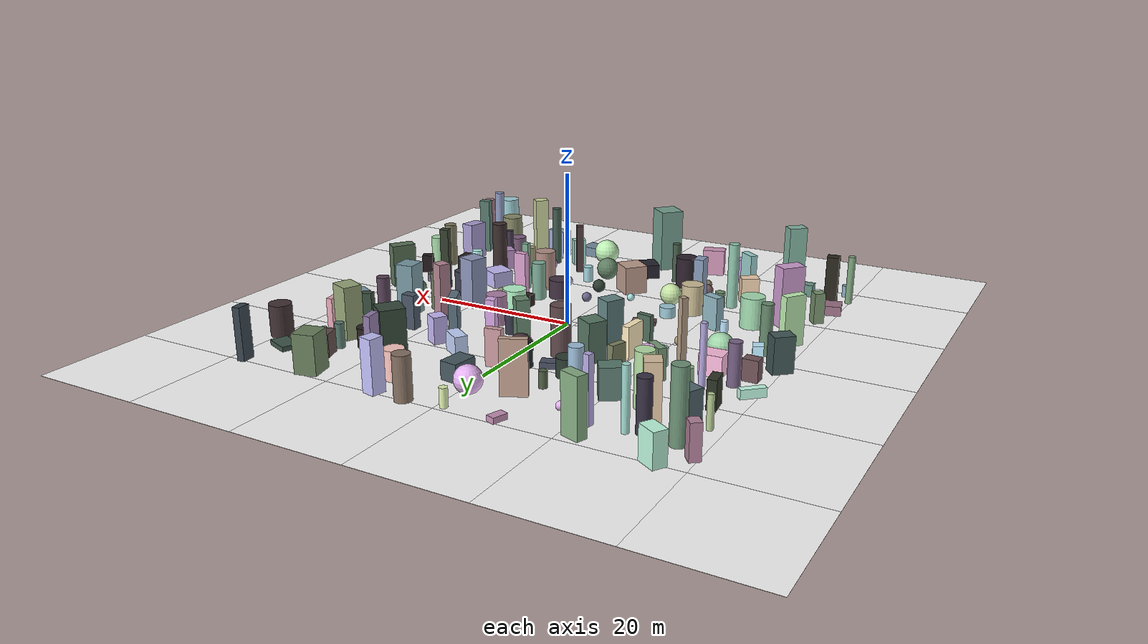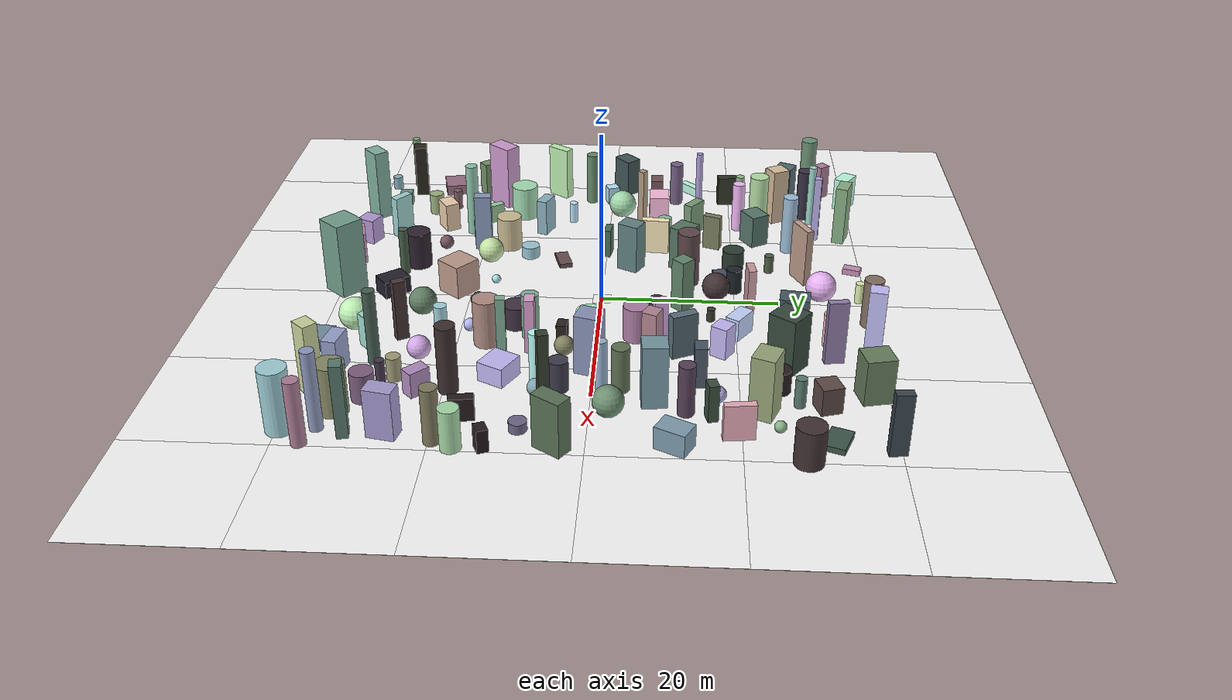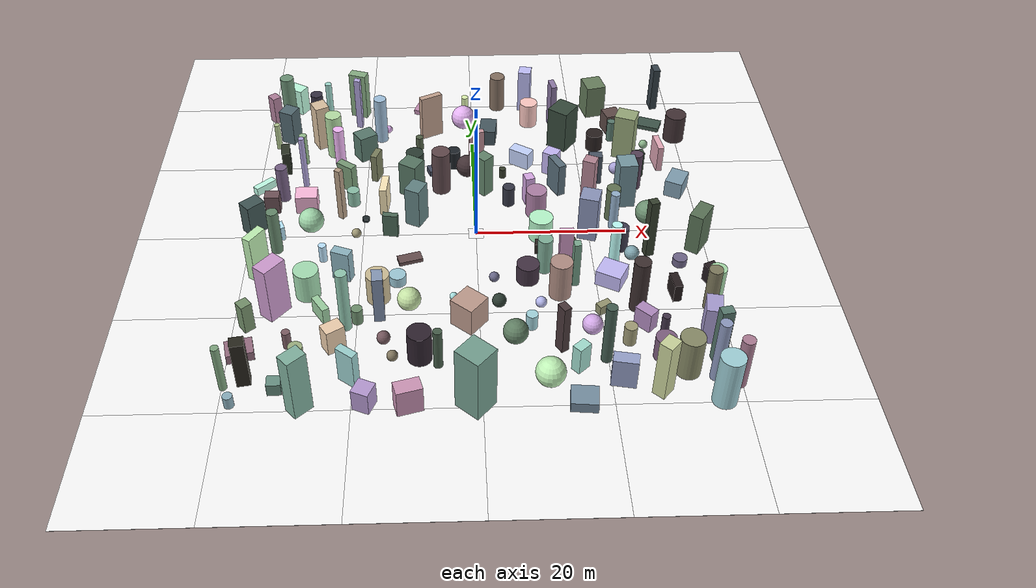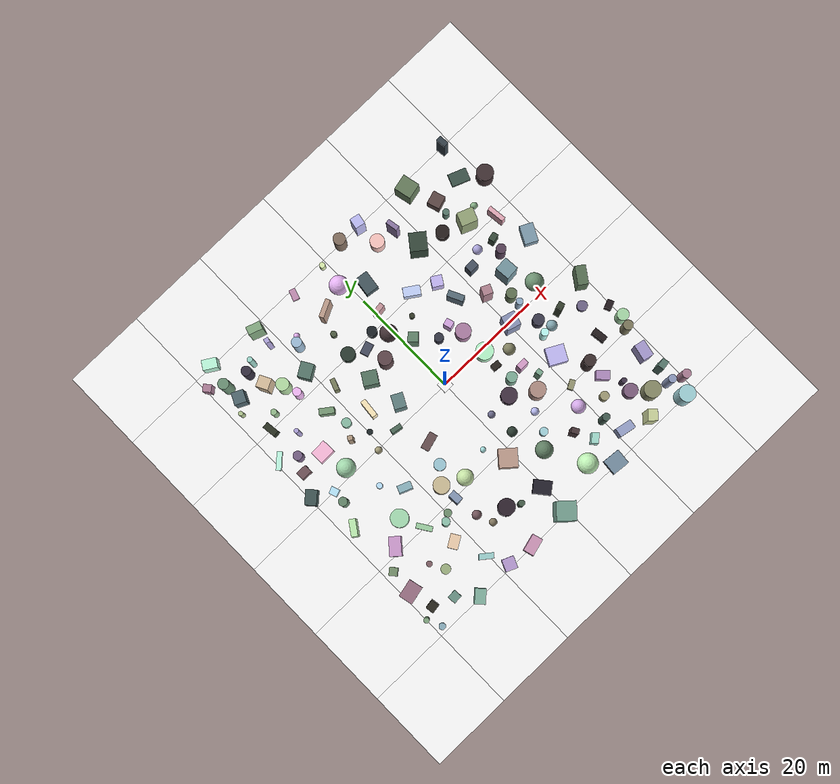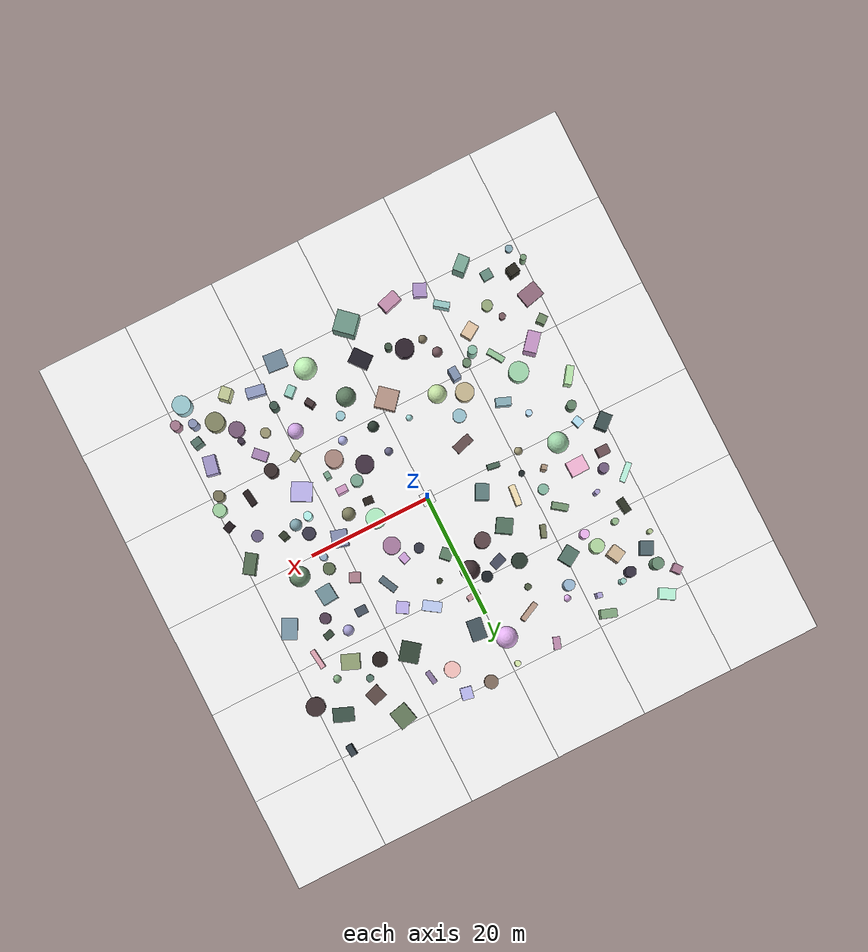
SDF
<sdf version="1.9">
 <world name="iris_runway">
  <physics name="1ms" type="ignore">
   <max_step_size>0.001</max_step_size>
   <real_time_factor>1.0</real_time_factor>
  </physics>
  <plugin filename="gz-sim-physics-system" name="gz::sim::systems::Physics"/>
  <plugin filename="gz-sim-sensors-system" name="gz::sim::systems::Sensors">
   <render_engine>ogre2</render_engine>
   <headless_rendering>false</headless_rendering>
  </plugin>
  <plugin filename="gz-sim-user-commands-system" name="gz::sim::systems::UserCommands"/>
  <plugin filename="gz-sim-scene-broadcaster-system" name="gz::sim::systems::SceneBroadcaster"/>
  <plugin filename="gz-sim-imu-system" name="gz::sim::systems::Imu"/>
  <plugin filename="gz-sim-navsat-system" name="gz::sim::systems::NavSat"/>
  <scene><ambient>1.0 1.0 1.0</ambient><background>0.8 0.8 0.8</background></scene>
  <spherical_coordinates>
   <latitude_deg>-35.363262</latitude_deg>
   <longitude_deg>149.165237</longitude_deg>
   <elevation>584</elevation>
   <heading_deg>0</heading_deg>
   <surface_model>EARTH_WGS84</surface_model>
  </spherical_coordinates>
  <light type="directional" name="sun">
   <pose>0 0 10 0 0 0</pose>
   <diffuse>0.8 0.8 0.8 1</diffuse>
   <specular>0.8 0.8 0.8 1</specular>
   <attenuation>
    <range>1000</range>
    <constant>0.9</constant>
    <linear>0.01</linear>
    <quadratic>0.001</quadratic>
   </attenuation>
   <direction>-0.5 0.1 -0.9</direction>
  </light>
  <model name="axes">
   <static>1</static>
   <link name="link">
    <visual name="r">
     <cast_shadows>0</cast_shadows>
     <pose>5 0 0.1 0 0 0</pose>
     <geometry><box><size>10 0.01 0.01</size></box></geometry>
     <material>
      <ambient>1 0 0 0.8</ambient>
      <diffuse>1 0 0 0.8</diffuse>
      <emissive>1 0 0 0.8</emissive>
      <specular>0.5 0.5 0.5 0.8</specular>
     </material>
    </visual>
    <visual name="g">
     <cast_shadows>0</cast_shadows>
     <pose>0 5 0.1 0 0 0</pose>
     <geometry><box><size>0.01 10 0.01</size></box></geometry>
     <material>
      <ambient>0 1 0 0.8</ambient>
      <diffuse>0 1 0 0.8</diffuse>
      <emissive>0 1 0 0.8</emissive>
      <specular>0.5 0.5 0.5 0.8</specular>
     </material>
    </visual>
    <visual name="b">
     <cast_shadows>0</cast_shadows>
     <pose>0 0 5.1 0 0 0</pose>
     <geometry><box><size>0.01 0.01 10</size></box></geometry>
     <material>
      <ambient>0 0 1 0.8</ambient>
      <diffuse>0 0 1 0.8</diffuse>
      <emissive>0 0 1 0.8</emissive>
      <specular>0.5 0.5 0.5 0.8</specular>
     </material>
    </visual>
    <sensor name="navsat_sensor" type="navsat"><always_on>1</always_on><update_rate>1</update_rate></sensor>
   </link>
  </model>
  <include><uri>model://vio_ground</uri></include>
  <include><uri>model://vio_feature_field</uri></include>
 </world>
</sdf>

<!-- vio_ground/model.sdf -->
<sdf version="1.9">
  <model name="vio_ground">
    <static>true</static>
    <link name="link">
      <visual name="g0_0">
        <pose>-37.50 -37.50 0.01 0 0 0</pose>
        <cast_shadows>false</cast_shadows>
        <geometry><box><size>15.00 15.00 0.02</size></box></geometry>
        <material>
          <ambient>1 1 1 1</ambient>
          <diffuse>1 1 1 1</diffuse>
          <specular>0.05 0.05 0.05 1</specular>
          <pbr><metal>
            <albedo_map>model://vio_ground/materials/textures/ground0.png</albedo_map>
            <roughness>0.9</roughness>
            <metalness>0</metalness>
          </metal></pbr>
        </material>
      </visual>
      <visual name="g0_1">
        <pose>-37.50 -22.50 0.01 0 0 0</pose>
        <cast_shadows>false</cast_shadows>
        <geometry><box><size>15.00 15.00 0.02</size></box></geometry>
        <material>
          <ambient>1 1 1 1</ambient>
          <diffuse>1 1 1 1</diffuse>
          <specular>0.05 0.05 0.05 1</specular>
          <pbr><metal>
            <albedo_map>model://vio_ground/materials/textures/ground2.png</albedo_map>
            <roughness>0.9</roughness>
            <metalness>0</metalness>
          </metal></pbr>
        </material>
      </visual>
      <visual name="g0_2">
        <pose>-37.50 -7.50 0.01 0 0 0</pose>
        <cast_shadows>false</cast_shadows>
        <geometry><box><size>15.00 15.00 0.02</size></box></geometry>
        <material>
          <ambient>1 1 1 1</ambient>
          <diffuse>1 1 1 1</diffuse>
          <specular>0.05 0.05 0.05 1</specular>
          <pbr><metal>
            <albedo_map>model://vio_ground/materials/textures/ground0.png</albedo_map>
            <roughness>0.9</roughness>
            <metalness>0</metalness>
          </metal></pbr>
        </material>
      </visual>
      <visual name="g0_3">
        <pose>-37.50 7.50 0.01 0 0 0</pose>
        <cast_shadows>false</cast_shadows>
        <geometry><box><size>15.00 15.00 0.02</size></box></geometry>
        <material>
          <ambient>1 1 1 1</ambient>
          <diffuse>1 1 1 1</diffuse>
          <specular>0.05 0.05 0.05 1</specular>
          <pbr><metal>
            <albedo_map>model://vio_ground/materials/textures/ground2.png</albedo_map>
            <roughness>0.9</roughness>
            <metalness>0</metalness>
          </metal></pbr>
        </material>
      </visual>
      <visual name="g0_4">
        <pose>-37.50 22.50 0.01 0 0 0</pose>
        <cast_shadows>false</cast_shadows>
        <geometry><box><size>15.00 15.00 0.02</size></box></geometry>
        <material>
          <ambient>1 1 1 1</ambient>
          <diffuse>1 1 1 1</diffuse>
          <specular>0.05 0.05 0.05 1</specular>
          <pbr><metal>
            <albedo_map>model://vio_ground/materials/textures/ground0.png</albedo_map>
            <roughness>0.9</roughness>
            <metalness>0</metalness>
          </metal></pbr>
        </material>
      </visual>
      <visual name="g0_5">
        <pose>-37.50 37.50 0.01 0 0 0</pose>
        <cast_shadows>false</cast_shadows>
        <geometry><box><size>15.00 15.00 0.02</size></box></geometry>
        <material>
          <ambient>1 1 1 1</ambient>
          <diffuse>1 1 1 1</diffuse>
          <specular>0.05 0.05 0.05 1</specular>
          <pbr><metal>
            <albedo_map>model://vio_ground/materials/textures/ground2.png</albedo_map>
            <roughness>0.9</roughness>
            <metalness>0</metalness>
          </metal></pbr>
        </material>
      </visual>
      <visual name="g1_0">
        <pose>-22.50 -37.50 0.01 0 0 0</pose>
        <cast_shadows>false</cast_shadows>
        <geometry><box><size>15.00 15.00 0.02</size></box></geometry>
        <material>
          <ambient>1 1 1 1</ambient>
          <diffuse>1 1 1 1</diffuse>
          <specular>0.05 0.05 0.05 1</specular>
          <pbr><metal>
            <albedo_map>model://vio_ground/materials/textures/ground1.png</albedo_map>
            <roughness>0.9</roughness>
            <metalness>0</metalness>
          </metal></pbr>
        </material>
      </visual>
      <visual name="g1_1">
        <pose>-22.50 -22.50 0.01 0 0 0</pose>
        <cast_shadows>false</cast_shadows>
        <geometry><box><size>15.00 15.00 0.02</size></box></geometry>
        <material>
          <ambient>1 1 1 1</ambient>
          <diffuse>1 1 1 1</diffuse>
          <specular>0.05 0.05 0.05 1</specular>
          <pbr><metal>
            <albedo_map>model://vio_ground/materials/textures/ground3.png</albedo_map>
            <roughness>0.9</roughness>
            <metalness>0</metalness>
          </metal></pbr>
        </material>
      </visual>
      <visual name="g1_2">
        <pose>-22.50 -7.50 0.01 0 0 0</pose>
        <cast_shadows>false</cast_shadows>
        <geometry><box><size>15.00 15.00 0.02</size></box></geometry>
        <material>
          <ambient>1 1 1 1</ambient>
          <diffuse>1 1 1 1</diffuse>
          <specular>0.05 0.05 0.05 1</specular>
          <pbr><metal>
            <albedo_map>model://vio_ground/materials/textures/ground1.png</albedo_map>
            <roughness>0.9</roughness>
            <metalness>0</metalness>
          </metal></pbr>
        </material>
      </visual>
      <visual name="g1_3">
        <pose>-22.50 7.50 0.01 0 0 0</pose>
        <cast_shadows>false</cast_shadows>
        <geometry><box><size>15.00 15.00 0.02</size></box></geometry>
        <material>
          <ambient>1 1 1 1</ambient>
          <diffuse>1 1 1 1</diffuse>
          <specular>0.05 0.05 0.05 1</specular>
          <pbr><metal>
            <albedo_map>model://vio_ground/materials/textures/ground3.png</albedo_map>
            <roughness>0.9</roughness>
            <metalness>0</metalness>
          </metal></pbr>
        </material>
      </visual>
      <visual name="g1_4">
        <pose>-22.50 22.50 0.01 0 0 0</pose>
        <cast_shadows>false</cast_shadows>
        <geometry><box><size>15.00 15.00 0.02</size></box></geometry>
        <material>
          <ambient>1 1 1 1</ambient>
          <diffuse>1 1 1 1</diffuse>
          <specular>0.05 0.05 0.05 1</specular>
          <pbr><metal>
            <albedo_map>model://vio_ground/materials/textures/ground1.png</albedo_map>
            <roughness>0.9</roughness>
            <metalness>0</metalness>
          </metal></pbr>
        </material>
      </visual>
      <visual name="g1_5">
        <pose>-22.50 37.50 0.01 0 0 0</pose>
        <cast_shadows>false</cast_shadows>
        <geometry><box><size>15.00 15.00 0.02</size></box></geometry>
        <material>
          <ambient>1 1 1 1</ambient>
          <diffuse>1 1 1 1</diffuse>
          <specular>0.05 0.05 0.05 1</specular>
          <pbr><metal>
            <albedo_map>model://vio_ground/materials/textures/ground3.png</albedo_map>
            <roughness>0.9</roughness>
            <metalness>0</metalness>
          </metal></pbr>
        </material>
      </visual>
      <visual name="g2_0">
        <pose>-7.50 -37.50 0.01 0 0 0</pose>
        <cast_shadows>false</cast_shadows>
        <geometry><box><size>15.00 15.00 0.02</size></box></geometry>
        <material>
          <ambient>1 1 1 1</ambient>
          <diffuse>1 1 1 1</diffuse>
          <specular>0.05 0.05 0.05 1</specular>
          <pbr><metal>
            <albedo_map>model://vio_ground/materials/textures/ground2.png</albedo_map>
            <roughness>0.9</roughness>
            <metalness>0</metalness>
          </metal></pbr>
        </material>
      </visual>
      <visual name="g2_1">
        <pose>-7.50 -22.50 0.01 0 0 0</pose>
        <cast_shadows>false</cast_shadows>
        <geometry><box><size>15.00 15.00 0.02</size></box></geometry>
        <material>
          <ambient>1 1 1 1</ambient>
          <diffuse>1 1 1 1</diffuse>
          <specular>0.05 0.05 0.05 1</specular>
          <pbr><metal>
            <albedo_map>model://vio_ground/materials/textures/ground0.png</albedo_map>
            <roughness>0.9</roughness>
            <metalness>0</metalness>
          </metal></pbr>
        </material>
      </visual>
      <visual name="g2_2">
        <pose>-7.50 -7.50 0.01 0 0 0</pose>
        <cast_shadows>false</cast_shadows>
        <geometry><box><size>15.00 15.00 0.02</size></box></geometry>
        <material>
          <ambient>1 1 1 1</ambient>
          <diffuse>1 1 1 1</diffuse>
          <specular>0.05 0.05 0.05 1</specular>
          <pbr><metal>
            <albedo_map>model://vio_ground/materials/textures/ground2.png</albedo_map>
            <roughness>0.9</roughness>
            <metalness>0</metalness>
          </metal></pbr>
        </material>
      </visual>
      <visual name="g2_3">
        <pose>-7.50 7.50 0.01 0 0 0</pose>
        <cast_shadows>false</cast_shadows>
        <geometry><box><size>15.00 15.00 0.02</size></box></geometry>
        <material>
          <ambient>1 1 1 1</ambient>
          <diffuse>1 1 1 1</diffuse>
          <specular>0.05 0.05 0.05 1</specular>
          <pbr><metal>
            <albedo_map>model://vio_ground/materials/textures/ground0.png</albedo_map>
            <roughness>0.9</roughness>
            <metalness>0</metalness>
          </metal></pbr>
        </material>
      </visual>
      <visual name="g2_4">
        <pose>-7.50 22.50 0.01 0 0 0</pose>
        <cast_shadows>false</cast_shadows>
        <geometry><box><size>15.00 15.00 0.02</size></box></geometry>
        <material>
          <ambient>1 1 1 1</ambient>
          <diffuse>1 1 1 1</diffuse>
          <specular>0.05 0.05 0.05 1</specular>
          <pbr><metal>
            <albedo_map>model://vio_ground/materials/textures/ground2.png</albedo_map>
            <roughness>0.9</roughness>
            <metalness>0</metalness>
          </metal></pbr>
        </material>
      </visual>
      <visual name="g2_5">
        <pose>-7.50 37.50 0.01 0 0 0</pose>
        <cast_shadows>false</cast_shadows>
        <geometry><box><size>15.00 15.00 0.02</size></box></geometry>
        <material>
          <ambient>1 1 1 1</ambient>
          <diffuse>1 1 1 1</diffuse>
          <specular>0.05 0.05 0.05 1</specular>
          <pbr><metal>
            <albedo_map>model://vio_ground/materials/textures/ground0.png</albedo_map>
            <roughness>0.9</roughness>
            <metalness>0</metalness>
          </metal></pbr>
        </material>
      </visual>
      <visual name="g3_0">
        <pose>7.50 -37.50 0.01 0 0 0</pose>
        <cast_shadows>false</cast_shadows>
        <geometry><box><size>15.00 15.00 0.02</size></box></geometry>
        <material>
          <ambient>1 1 1 1</ambient>
          <diffuse>1 1 1 1</diffuse>
          <specular>0.05 0.05 0.05 1</specular>
          <pbr><metal>
            <albedo_map>model://vio_ground/materials/textures/ground3.png</albedo_map>
            <roughness>0.9</roughness>
            <metalness>0</metalness>
          </metal></pbr>
        </material>
      </visual>
      <visual name="g3_1">
        <pose>7.50 -22.50 0.01 0 0 0</pose>
        <cast_shadows>false</cast_shadows>
        <geometry><box><size>15.00 15.00 0.02</size></box></geometry>
        <material>
          <ambient>1 1 1 1</ambient>
          <diffuse>1 1 1 1</diffuse>
          <specular>0.05 0.05 0.05 1</specular>
          <pbr><metal>
            <albedo_map>model://vio_ground/materials/textures/ground1.png</albedo_map>
            <roughness>0.9</roughness>
            <metalness>0</metalness>
          </metal></pbr>
        </material>
      </visual>
      <visual name="g3_2">
        <pose>7.50 -7.50 0.01 0 0 0</pose>
        <cast_shadows>false</cast_shadows>
        <geometry><box><size>15.00 15.00 0.02</size></box></geometry>
        <material>
          <ambient>1 1 1 1</ambient>
          <diffuse>1 1 1 1</diffuse>
          <specular>0.05 0.05 0.05 1</specular>
          <pbr><metal>
            <albedo_map>model://vio_ground/materials/textures/ground3.png</albedo_map>
            <roughness>0.9</roughness>
            <metalness>0</metalness>
          </metal></pbr>
        </material>
      </visual>
      <visual name="g3_3">
        <pose>7.50 7.50 0.01 0 0 0</pose>
        <cast_shadows>false</cast_shadows>
        <geometry><box><size>15.00 15.00 0.02</size></box></geometry>
        <material>
          <ambient>1 1 1 1</ambient>
          <diffuse>1 1 1 1</diffuse>
          <specular>0.05 0.05 0.05 1</specular>
          <pbr><metal>
            <albedo_map>model://vio_ground/materials/textures/ground1.png</albedo_map>
            <roughness>0.9</roughness>
            <metalness>0</metalness>
          </metal></pbr>
        </material>
      </visual>
      <visual name="g3_4">
        <pose>7.50 22.50 0.01 0 0 0</pose>
        <cast_shadows>false</cast_shadows>
        <geometry><box><size>15.00 15.00 0.02</size></box></geometry>
        <material>
          <ambient>1 1 1 1</ambient>
          <diffuse>1 1 1 1</diffuse>
          <specular>0.05 0.05 0.05 1</specular>
          <pbr><metal>
            <albedo_map>model://vio_ground/materials/textures/ground3.png</albedo_map>
            <roughness>0.9</roughness>
            <metalness>0</metalness>
          </metal></pbr>
        </material>
      </visual>
      <visual name="g3_5">
        <pose>7.50 37.50 0.01 0 0 0</pose>
        <cast_shadows>false</cast_shadows>
        <geometry><box><size>15.00 15.00 0.02</size></box></geometry>
        <material>
          <ambient>1 1 1 1</ambient>
          <diffuse>1 1 1 1</diffuse>
          <specular>0.05 0.05 0.05 1</specular>
          <pbr><metal>
            <albedo_map>model://vio_ground/materials/textures/ground1.png</albedo_map>
            <roughness>0.9</roughness>
            <metalness>0</metalness>
          </metal></pbr>
        </material>
      </visual>
      <visual name="g4_0">
        <pose>22.50 -37.50 0.01 0 0 0</pose>
        <cast_shadows>false</cast_shadows>
        <geometry><box><size>15.00 15.00 0.02</size></box></geometry>
        <material>
          <ambient>1 1 1 1</ambient>
          <diffuse>1 1 1 1</diffuse>
          <specular>0.05 0.05 0.05 1</specular>
          <pbr><metal>
            <albedo_map>model://vio_ground/materials/textures/ground0.png</albedo_map>
            <roughness>0.9</roughness>
            <metalness>0</metalness>
          </metal></pbr>
        </material>
      </visual>
      <visual name="g4_1">
        <pose>22.50 -22.50 0.01 0 0 0</pose>
        <cast_shadows>false</cast_shadows>
        <geometry><box><size>15.00 15.00 0.02</size></box></geometry>
        <material>
          <ambient>1 1 1 1</ambient>
          <diffuse>1 1 1 1</diffuse>
          <specular>0.05 0.05 0.05 1</specular>
          <pbr><metal>
            <albedo_map>model://vio_ground/materials/textures/ground2.png</albedo_map>
            <roughness>0.9</roughness>
            <metalness>0</metalness>
          </metal></pbr>
        </material>
      </visual>
      <visual name="g4_2">
        <pose>22.50 -7.50 0.01 0 0 0</pose>
        <cast_shadows>false</cast_shadows>
        <geometry><box><size>15.00 15.00 0.02</size></box></geometry>
        <material>
          <ambient>1 1 1 1</ambient>
          <diffuse>1 1 1 1</diffuse>
          <specular>0.05 0.05 0.05 1</specular>
          <pbr><metal>
            <albedo_map>model://vio_ground/materials/textures/ground0.png</albedo_map>
            <roughness>0.9</roughness>
            <metalness>0</metalness>
          </metal></pbr>
        </material>
      </visual>
      <visual name="g4_3">
        <pose>22.50 7.50 0.01 0 0 0</pose>
        <cast_shadows>false</cast_shadows>
        <geometry><box><size>15.00 15.00 0.02</size></box></geometry>
        <material>
          <ambient>1 1 1 1</ambient>
          <diffuse>1 1 1 1</diffuse>
          <specular>0.05 0.05 0.05 1</specular>
          <pbr><metal>
            <albedo_map>model://vio_ground/materials/textures/ground2.png</albedo_map>
            <roughness>0.9</roughness>
            <metalness>0</metalness>
          </metal></pbr>
        </material>
      </visual>
      <visual name="g4_4">
        <pose>22.50 22.50 0.01 0 0 0</pose>
        <cast_shadows>false</cast_shadows>
        <geometry><box><size>15.00 15.00 0.02</size></box></geometry>
        <material>
          <ambient>1 1 1 1</ambient>
          <diffuse>1 1 1 1</diffuse>
          <specular>0.05 0.05 0.05 1</specular>
          <pbr><metal>
            <albedo_map>model://vio_ground/materials/textures/ground0.png</albedo_map>
            <roughness>0.9</roughness>
            <metalness>0</metalness>
          </metal></pbr>
        </material>
      </visual>
      <visual name="g4_5">
        <pose>22.50 37.50 0.01 0 0 0</pose>
        <cast_shadows>false</cast_shadows>
        <geometry><box><size>15.00 15.00 0.02</size></box></geometry>
        <material>
          <ambient>1 1 1 1</ambient>
          <diffuse>1 1 1 1</diffuse>
          <specular>0.05 0.05 0.05 1</specular>
          <pbr><metal>
            <albedo_map>model://vio_ground/materials/textures/ground2.png</albedo_map>
            <roughness>0.9</roughness>
            <metalness>0</metalness>
          </metal></pbr>
        </material>
      </visual>
      <visual name="g5_0">
        <pose>37.50 -37.50 0.01 0 0 0</pose>
        <cast_shadows>false</cast_shadows>
        <geometry><box><size>15.00 15.00 0.02</size></box></geometry>
        <material>
          <ambient>1 1 1 1</ambient>
          <diffuse>1 1 1 1</diffuse>
          <specular>0.05 0.05 0.05 1</specular>
          <pbr><metal>
            <albedo_map>model://vio_ground/materials/textures/ground1.png</albedo_map>
            <roughness>0.9</roughness>
            <metalness>0</metalness>
          </metal></pbr>
        </material>
      </visual>
      <visual name="g5_1">
        <pose>37.50 -22.50 0.01 0 0 0</pose>
        <cast_shadows>false</cast_shadows>
        <geometry><box><size>15.00 15.00 0.02</size></box></geometry>
        <material>
          <ambient>1 1 1 1</ambient>
          <diffuse>1 1 1 1</diffuse>
          <specular>0.05 0.05 0.05 1</specular>
          <pbr><metal>
            <albedo_map>model://vio_ground/materials/textures/ground3.png</albedo_map>
            <roughness>0.9</roughness>
            <metalness>0</metalness>
          </metal></pbr>
        </material>
      </visual>
      <visual name="g5_2">
        <pose>37.50 -7.50 0.01 0 0 0</pose>
        <cast_shadows>false</cast_shadows>
        <geometry><box><size>15.00 15.00 0.02</size></box></geometry>
        <material>
          <ambient>1 1 1 1</ambient>
          <diffuse>1 1 1 1</diffuse>
          <specular>0.05 0.05 0.05 1</specular>
          <pbr><metal>
            <albedo_map>model://vio_ground/materials/textures/ground1.png</albedo_map>
            <roughness>0.9</roughness>
            <metalness>0</metalness>
          </metal></pbr>
        </material>
      </visual>
      <visual name="g5_3">
        <pose>37.50 7.50 0.01 0 0 0</pose>
        <cast_shadows>false</cast_shadows>
        <geometry><box><size>15.00 15.00 0.02</size></box></geometry>
        <material>
          <ambient>1 1 1 1</ambient>
          <diffuse>1 1 1 1</diffuse>
          <specular>0.05 0.05 0.05 1</specular>
          <pbr><metal>
            <albedo_map>model://vio_ground/materials/textures/ground3.png</albedo_map>
            <roughness>0.9</roughness>
            <metalness>0</metalness>
          </metal></pbr>
        </material>
      </visual>
      <visual name="g5_4">
        <pose>37.50 22.50 0.01 0 0 0</pose>
        <cast_shadows>false</cast_shadows>
        <geometry><box><size>15.00 15.00 0.02</size></box></geometry>
        <material>
          <ambient>1 1 1 1</ambient>
          <diffuse>1 1 1 1</diffuse>
          <specular>0.05 0.05 0.05 1</specular>
          <pbr><metal>
            <albedo_map>model://vio_ground/materials/textures/ground1.png</albedo_map>
            <roughness>0.9</roughness>
            <metalness>0</metalness>
          </metal></pbr>
        </material>
      </visual>
      <visual name="g5_5">
        <pose>37.50 37.50 0.01 0 0 0</pose>
        <cast_shadows>false</cast_shadows>
        <geometry><box><size>15.00 15.00 0.02</size></box></geometry>
        <material>
          <ambient>1 1 1 1</ambient>
          <diffuse>1 1 1 1</diffuse>
          <specular>0.05 0.05 0.05 1</specular>
          <pbr><metal>
            <albedo_map>model://vio_ground/materials/textures/ground3.png</albedo_map>
            <roughness>0.9</roughness>
            <metalness>0</metalness>
          </metal></pbr>
        </material>
      </visual>
      <visual name="takeoff_pad">
        <pose>0 0 0.025 0 0 0</pose>
        <cast_shadows>false</cast_shadows>
        <geometry><box><size>2.00 2.00 0.01</size></box></geometry>
        <material>
          <ambient>1 1 1 1</ambient>
          <diffuse>1 1 1 1</diffuse>
          <specular>0.05 0.05 0.05 1</specular>
          <pbr><metal>
            <albedo_map>model://vio_ground/materials/textures/pad.png</albedo_map>
            <roughness>0.9</roughness>
            <metalness>0</metalness>
          </metal></pbr>
        </material>
      </visual>
    </link>
  </model>
</sdf>
